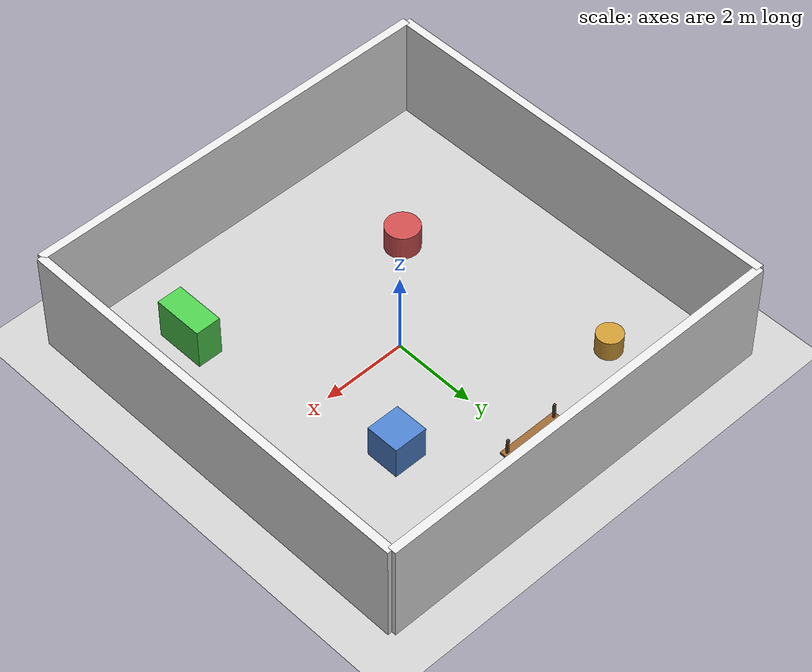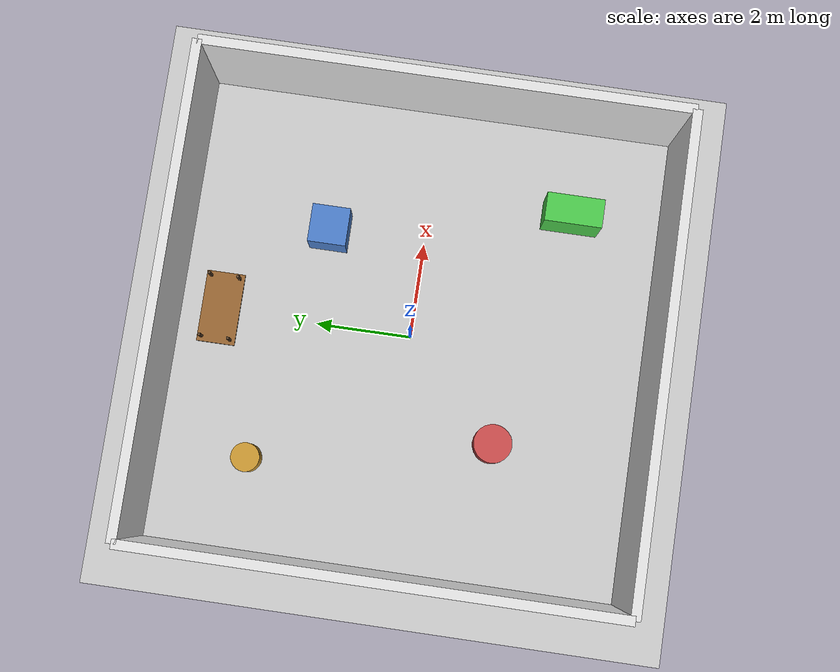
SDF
<?xml version="1.0"?>
<sdf version="1.6">
  <world name="cofetch_world">
    <physics name="default_physics" type="ode">
      <max_step_size>0.001</max_step_size>
      <real_time_factor>1.0</real_time_factor>
      <real_time_update_rate>1000</real_time_update_rate>
    </physics>

    <scene>
      <ambient>0.5 0.5 0.5 1</ambient>
      <background>0.7 0.7 0.7 1</background>
      <shadows>true</shadows>
    </scene>

    <light type="directional" name="sun">
      <cast_shadows>true</cast_shadows>
      <pose>0 0 10 0 0 0</pose>
      <diffuse>0.9 0.9 0.9 1</diffuse>
      <specular>0.3 0.3 0.3 1</specular>
      <attenuation range="20"/>
      <direction>-0.5 0.5 -1.0</direction>
    </light>

    <model name="ground_plane">
      <static>true</static>
      <link name="ground_link">
        <collision name="ground_collision">
          <geometry>
            <plane>
              <normal>0 0 1</normal>
              <size>20 20</size>
            </plane>
          </geometry>
          <surface>
            <friction>
              <ode>
                <mu>100</mu>
                <mu2>100</mu2>
              </ode>
            </friction>
          </surface>
        </collision>
        <visual name="ground_visual">
          <geometry>
            <plane>
              <normal>0 0 1</normal>
              <size>20 20</size>
            </plane>
          </geometry>
          <material>
            <ambient>0.8 0.8 0.8 1</ambient>
            <diffuse>0.8 0.8 0.8 1</diffuse>
            <specular>0.1 0.1 0.1 1</specular>
          </material>
        </visual>
      </link>
    </model>

    <model name="room_walls">
      <static>true</static>
      <pose>0 0 0 0 0 0</pose>

      <link name="wall_north">
        <pose>0 5 1.25 0 0 0</pose>
        <collision name="wall_north_collision">
          <geometry>
            <box>
              <size>10 0.2 2.5</size>
            </box>
          </geometry>
        </collision>
        <visual name="wall_north_visual">
          <geometry>
            <box>
              <size>10 0.2 2.5</size>
            </box>
          </geometry>
          <material>
            <ambient>0.9 0.9 0.9 1</ambient>
            <diffuse>0.9 0.9 0.9 1</diffuse>
          </material>
        </visual>
      </link>

      <link name="wall_south">
        <pose>0 -5 1.25 0 0 0</pose>
        <collision name="wall_south_collision">
          <geometry>
            <box>
              <size>10 0.2 2.5</size>
            </box>
          </geometry>
        </collision>
        <visual name="wall_south_visual">
          <geometry>
            <box>
              <size>10 0.2 2.5</size>
            </box>
          </geometry>
          <material>
            <ambient>0.9 0.9 0.9 1</ambient>
            <diffuse>0.9 0.9 0.9 1</diffuse>
          </material>
        </visual>
      </link>

      <link name="wall_east">
        <pose>5 0 1.25 0 0 0</pose>
        <collision name="wall_east_collision">
          <geometry>
            <box>
              <size>0.2 10 2.5</size>
            </box>
          </geometry>
        </collision>
        <visual name="wall_east_visual">
          <geometry>
            <box>
              <size>0.2 10 2.5</size>
            </box>
          </geometry>
          <material>
            <ambient>0.9 0.9 0.9 1</ambient>
            <diffuse>0.9 0.9 0.9 1</diffuse>
          </material>
        </visual>
      </link>

      <link name="wall_west">
        <pose>-5 0 1.25 0 0 0</pose>
        <collision name="wall_west_collision">
          <geometry>
            <box>
              <size>0.2 10 2.5</size>
            </box>
          </geometry>
        </collision>
        <visual name="wall_west_visual">
          <geometry>
            <box>
              <size>0.2 10 2.5</size>
            </box>
          </geometry>
          <material>
            <ambient>0.9 0.9 0.9 1</ambient>
            <diffuse>0.9 0.9 0.9 1</diffuse>
          </material>
        </visual>
      </link>
    </model>

    <model name="obstacle_1">
      <static>true</static>
      <pose>2 2 0.4 0 0 0</pose>
      <link name="obstacle_1_link">
        <collision name="obstacle_1_collision">
          <geometry>
            <box>
              <size>0.8 0.8 0.8</size>
            </box>
          </geometry>
        </collision>
        <visual name="obstacle_1_visual">
          <geometry>
            <box>
              <size>0.8 0.8 0.8</size>
            </box>
          </geometry>
          <material>
            <ambient>0.3 0.5 0.8 1</ambient>
            <diffuse>0.3 0.5 0.8 1</diffuse>
          </material>
        </visual>
      </link>
    </model>

    <model name="obstacle_2">
      <static>true</static>
      <pose>-2 -2 0.3 0 0 0</pose>
      <link name="obstacle_2_link">
        <collision name="obstacle_2_collision">
          <geometry>
            <cylinder>
              <radius>0.4</radius>
              <length>0.6</length>
            </cylinder>
          </geometry>
        </collision>
        <visual name="obstacle_2_visual">
          <geometry>
            <cylinder>
              <radius>0.4</radius>
              <length>0.6</length>
            </cylinder>
          </geometry>
          <material>
            <ambient>0.8 0.3 0.3 1</ambient>
            <diffuse>0.8 0.3 0.3 1</diffuse>
          </material>
        </visual>
      </link>
    </model>

    <model name="obstacle_3">
      <static>true</static>
      <pose>3 -3 0.5 0 0 0</pose>
      <link name="obstacle_3_link">
        <collision name="obstacle_3_collision">
          <geometry>
            <box>
              <size>0.6 1.2 1.0</size>
            </box>
          </geometry>
        </collision>
        <visual name="obstacle_3_visual">
          <geometry>
            <box>
              <size>0.6 1.2 1.0</size>
            </box>
          </geometry>
          <material>
            <ambient>0.3 0.8 0.3 1</ambient>
            <diffuse>0.3 0.8 0.3 1</diffuse>
          </material>
        </visual>
      </link>
    </model>

    <model name="obstacle_4">
      <static>true</static>
      <pose>-3 3 0.25 0 0 0</pose>
      <link name="obstacle_4_link">
        <collision name="obstacle_4_collision">
          <geometry>
            <cylinder>
              <radius>0.3</radius>
              <length>0.5</length>
            </cylinder>
          </geometry>
        </collision>
        <visual name="obstacle_4_visual">
          <geometry>
            <cylinder>
              <radius>0.3</radius>
              <length>0.5</length>
            </cylinder>
          </geometry>
          <material>
            <ambient>0.8 0.6 0.2 1</ambient>
            <diffuse>0.8 0.6 0.2 1</diffuse>
          </material>
        </visual>
      </link>
    </model>

    <model name="table_1">
      <static>true</static>
      <pose>0 4 0.4 0 0 0</pose>
      <link name="table_1_base">
        <collision name="table_1_collision">
          <geometry>
            <box>
              <size>1.5 0.8 0.05</size>
            </box>
          </geometry>
        </collision>
        <visual name="table_1_visual">
          <geometry>
            <box>
              <size>1.5 0.8 0.05</size>
            </box>
          </geometry>
          <material>
            <ambient>0.6 0.4 0.2 1</ambient>
            <diffuse>0.6 0.4 0.2 1</diffuse>
          </material>
        </visual>
      </link>
      <link name="table_1_leg1">
        <pose>0.65 0.3 0.2 0 0 0</pose>
        <collision name="table_1_leg1_collision">
          <geometry>
            <box>
              <size>0.05 0.05 0.4</size>
            </box>
          </geometry>
        </collision>
        <visual name="table_1_leg1_visual">
          <geometry>
            <box>
              <size>0.05 0.05 0.4</size>
            </box>
          </geometry>
          <material>
            <ambient>0.4 0.3 0.2 1</ambient>
            <diffuse>0.4 0.3 0.2 1</diffuse>
          </material>
        </visual>
      </link>
      <link name="table_1_leg2">
        <pose>0.65 -0.3 0.2 0 0 0</pose>
        <collision name="table_1_leg2_collision">
          <geometry>
            <box>
              <size>0.05 0.05 0.4</size>
            </box>
          </geometry>
        </collision>
        <visual name="table_1_leg2_visual">
          <geometry>
            <box>
              <size>0.05 0.05 0.4</size>
            </box>
          </geometry>
          <material>
            <ambient>0.4 0.3 0.2 1</ambient>
            <diffuse>0.4 0.3 0.2 1</diffuse>
          </material>
        </visual>
      </link>
      <link name="table_1_leg3">
        <pose>-0.65 0.3 0.2 0 0 0</pose>
        <collision name="table_1_leg3_collision">
          <geometry>
            <box>
              <size>0.05 0.05 0.4</size>
            </box>
          </geometry>
        </collision>
        <visual name="table_1_leg3_visual">
          <geometry>
            <box>
              <size>0.05 0.05 0.4</size>
            </box>
          </geometry>
          <material>
            <ambient>0.4 0.3 0.2 1</ambient>
            <diffuse>0.4 0.3 0.2 1</diffuse>
          </material>
        </visual>
      </link>
      <link name="table_1_leg4">
        <pose>-0.65 -0.3 0.2 0 0 0</pose>
        <collision name="table_1_leg4_collision">
          <geometry>
            <box>
              <size>0.05 0.05 0.4</size>
            </box>
          </geometry>
        </collision>
        <visual name="table_1_leg4_visual">
          <geometry>
            <box>
              <size>0.05 0.05 0.4</size>
            </box>
          </geometry>
          <material>
            <ambient>0.4 0.3 0.2 1</ambient>
            <diffuse>0.4 0.3 0.2 1</diffuse>
          </material>
        </visual>
      </link>
    </model>

  </world>
</sdf>
